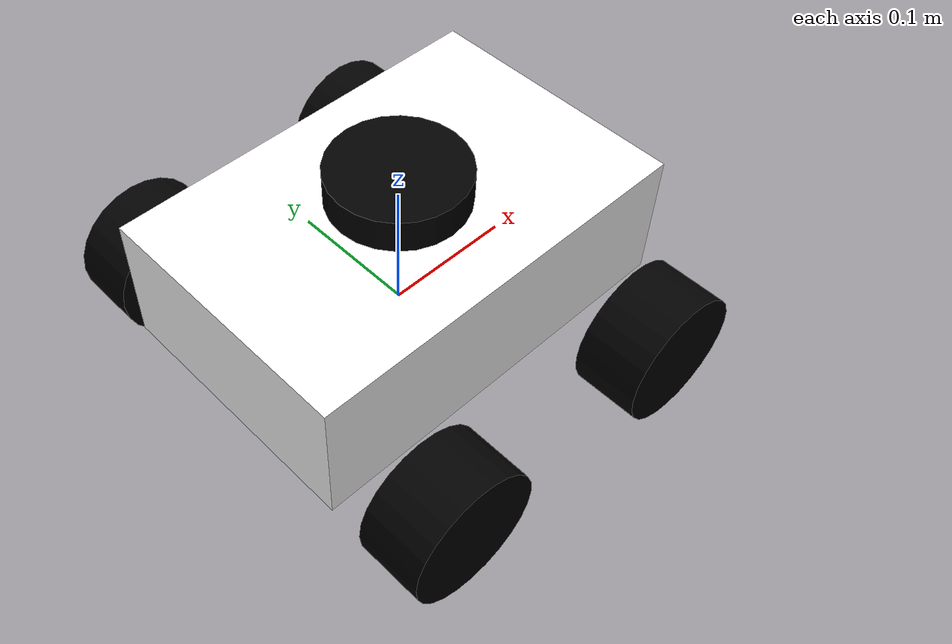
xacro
<?xml version="1.0"?>

<robot xmlns:xacro="http://www.ros.org/wiki/xacro"
    xmlns:sensor="http://playerstage.sourceforge.net/gazebo/xmlschema/#sensor"
    xmlns:controller="http://playerstage.sourceforge.net/gazebo/xmlschema/#controller"
    xmlns:interface="http://playerstage.sourceforge.net/gazebo/xmlschema/#interface"
    name="robot1_xacro">
    <xacro:include filename="$(find mycar_description)/urdf/lidar.xacro" />

    <xacro:property name="length_wheel" value="0.05" />             <!--长度 -->
    <xacro:property name="radius_wheel" value="0.05" />             <!--半径-->
    <xacro:macro name="default_inertial" params="mass">
               <inertial>
                       <mass value="${mass}" />
                       <inertia ixx="1.0" ixy="0.0" ixz="0.0"
                                iyy="1.0" iyz="0.0"
                                izz="1.0" />
               </inertial>
    </xacro:macro>

    <link name="base_footprint">
        <visual>
            <geometry>
                    <box size="0.001 0.001 0.001"/>
                </geometry>
            <origin rpy="0 0 0" xyz="0 0 0"/>
        </visual>
        <xacro:default_inertial mass="0.0001"/>
    </link>
    <joint name="base_footprint_joint" type="fixed">
        <origin xyz="0 0 0" />
        <parent link="base_footprint" />
        <child link="base_link" />
    </joint>

    <link name="base_link">
        <visual>
            <geometry>
                    <box size="0.2 .3 .1"/>
                </geometry>
            <origin rpy="0 0 1.57075" xyz="0 0 0.05"/>
            <material name="white">
                <color rgba="1 1 1 1"/>
            </material>
        </visual>
        <collision>
            <geometry>
                    <box size="0.2 .3 0.1"/>
            </geometry>
        </collision>
        <xacro:default_inertial mass="10"/>
    </link>

    <link name="left_front_wheel">
        <visual>
                <geometry>
                    <cylinder length="${length_wheel}" radius="${radius_wheel}"/>
                </geometry>
            <origin rpy="0 0 0" xyz="0 0 0"/>
            <material name="black">
                <color rgba="0 0 0 1"/>
            </material>
        </visual>
        <collision>
            <geometry>
                    <cylinder length="${length_wheel}" radius="${radius_wheel}"/>
            </geometry>
        </collision>
        <xacro:default_inertial mass="1"/>
    </link>

    <link name="left_back_wheel">
        <visual>
                <geometry>
                    <cylinder length="${length_wheel}" radius="${radius_wheel}"/>
                </geometry>
            <origin rpy="0 0 0" xyz="0 0 0"/>
            <material name="black"/>
        </visual>
        <collision>
            <geometry>
                    <cylinder length="${length_wheel}" radius="${radius_wheel}"/>
            </geometry>
        </collision>
        <xacro:default_inertial mass="1"/>
    </link>

    <link name="right_front_wheel">
        <visual>
                <geometry>
                    <cylinder length="${length_wheel}" radius="${radius_wheel}"/>
                </geometry>

            <origin rpy="0 0 0" xyz="0 0 0"/>
            <material name="black"/>
        </visual>
        <collision>
            <geometry>
                    <cylinder length="${length_wheel}" radius="${radius_wheel}"/>
            </geometry>
        </collision>
        <xacro:default_inertial mass="1"/>
    </link>

    <link name="right_back_wheel">
        <visual>
                <geometry>
                    <cylinder length="${length_wheel}" radius="${radius_wheel}"/>
                </geometry>
            <origin rpy="0 0 0" xyz="0 0 0" />
            <material name="black"/>
        </visual>
        <collision>
            <geometry>
                    <cylinder length="${length_wheel}" radius="${radius_wheel}"/>
            </geometry>
        </collision>
        <xacro:default_inertial mass="1"/>
    </link>

     <joint name="base_to_left_front_wheel" type="continuous">
       <parent link="base_link"/>
       <child link="left_front_wheel"/>
       <origin rpy="1.5707 0 0" xyz="0.1 0.15 0"/>
       <axis xyz="0 0 1" />
     </joint>

     <joint name="base_to_left_back_wheel" type="continuous">
       <axis xyz="0 0 1" />
       <anchor xyz="0 0 0" />
       <limit effort="100" velocity="100" />
       <parent link="base_link"/>
       <child link="left_back_wheel"/>
       <origin rpy="1.5707 0 0" xyz="-0.1 0.15 0"/>
     </joint>

     <joint name="base_to_right_front_wheel" type="continuous">
       <parent link="base_link"/>
       <axis xyz="0 0 1" />
       <child link="right_front_wheel"/>
       <origin rpy="1.5707 0 0" xyz="0.1 -0.15 0"/>
     </joint>

     <joint name="base_to_right_back_wheel" type="continuous">
       <parent link="base_link"/>
       <axis xyz="0 0 1" />
       <child link="right_back_wheel"/>
       <origin rpy="1.5707 0 0" xyz="-0.1 -0.15 0"/>
     </joint>

	<!-- Attach the rplidar -->
	<joint name="rplidar_joint" type="fixed">
		<origin xyz="0 0 0.1" rpy="0 0 0" />
		<parent link="base_link"/>
		<child link="laser"/>
	</joint>

	<xacro:rplidar prefix="laser"/>

<gazebo>
  <plugin name="skid_steer_drive_controller" filename="libgazebo_ros_skid_steer_drive.so">
    <updateRate>50.0</updateRate>
    <robotNamespace></robotNamespace>
    <leftFrontJoint>base_to_left_front_wheel</leftFrontJoint>
    <leftRearJoint>base_to_left_back_wheel</leftRearJoint>
    <rightFrontJoint>base_to_right_front_wheel</rightFrontJoint>
    <rightRearJoint>base_to_right_back_wheel</rightRearJoint>
    <wheelSeparation>4</wheelSeparation>
    <wheelDiameter>0.1</wheelDiameter>
    <commandTopic>cmd_vel</commandTopic>
    <odometryTopic>odom</odometryTopic>
    <robotBaseFrame>base_footprint</robotBaseFrame>
    <odometryFrame>odom</odometryFrame>
    <torque>1</torque>
    <topicName>cmd_vel</topicName>
    <broadcastTF>1</broadcastTF>
  </plugin>
</gazebo>

<gazebo>
    <plugin name="gazebo_ros_control" filename="libgazebo_ros_control.so">
      <robotNamespace>/robot</robotNamespace>
      <legacyModeNS>true</legacyModeNS>
    </plugin>
  </gazebo>

</robot>

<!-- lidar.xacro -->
<robot xmlns:xacro="http://www.ros.org/wiki/xacro" name="laser">

    <xacro:macro name="rplidar" params="prefix:=laser">
        <!-- Create laser reference frame -->
        <link name="${prefix}">
            <inertial>
                <mass value="0.0" />
                <origin xyz="0 0 0" />
                <inertia ixx="0.00" ixy="0.0" ixz="0.0"
                         iyy="0.00" iyz="0.0"
                         izz="0.00" />
            </inertial>

            <visual>
                <origin xyz=" 0 0 0 " rpy="0 0 0" />
                <geometry>
                    <cylinder length="0.05" radius="0.05"/>
                </geometry>
                <material name="black"/>
            </visual>

            <collision>
                <origin xyz="0.0 0.0 0.0" rpy="0 0 0" />
                <geometry>
                    <cylinder length="0.06" radius="0.05"/>
                </geometry>
            </collision>
        </link>
        <gazebo reference="${prefix}">
            <material>Gazebo/Black</material>
        </gazebo>

        <gazebo reference="${prefix}">
            <sensor type="ray" name="rplidar">
                <pose>0 0 0 0 0 0</pose>
                <visualize>false</visualize>
                <update_rate>5.5</update_rate>
                <ray>
                    <scan>
                      <horizontal>
                        <samples>360</samples>
                        <resolution>1</resolution>
                        <min_angle>-3</min_angle>
                        <max_angle>3</max_angle>
                      </horizontal>
                    </scan>
                    <range>
                      <min>0.10</min>
                      <max>6</max>
                      <resolution>0.01</resolution>
                    </range>
                    <noise>
                      <type>gaussian</type>
                      <mean>0.0</mean>
                      <stddev>0.01</stddev>
                    </noise>
                </ray>
                <plugin name="gazebo_rplidar" filename="libgazebo_ros_laser.so">
                    <topicName>/scan</topicName>
                    <frameName>laser</frameName>
                </plugin>
            </sensor>
        </gazebo>

    </xacro:macro>
</robot>
